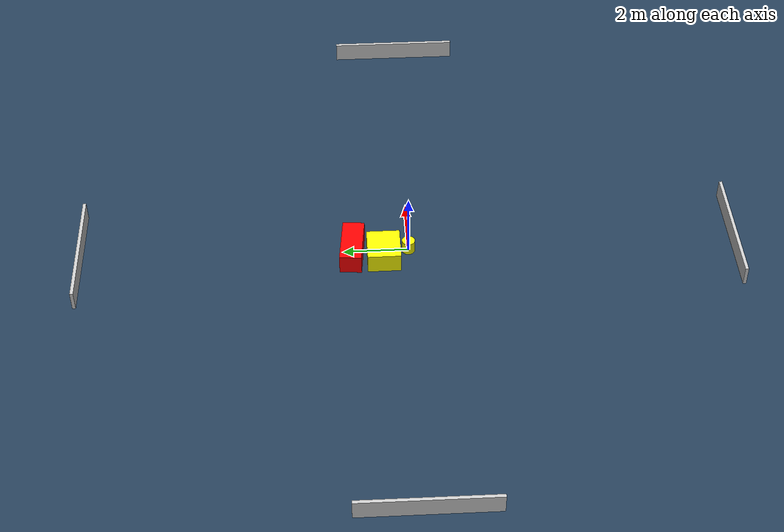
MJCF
<?xml version="1.0" ?>
<mujoco model="generated_environment">
  <option timestep="0.01" integrator="RK4" cone="elliptic"/>
  <default>
    <geom density="1"/>
  </default>
  <asset>
    <texture builtin="gradient" height="3072" name="skybox" rgb1="0.3 0.5 0.7" rgb2="0 0 0" type="skybox" width="512"/>
    <texture builtin="checker" height="300" name="groundplane" rgb1="0.2 0.3 0.4" rgb2="0.1 0.2 0.3" type="2d" width="300"/>
    <material name="groundplane" reflectance="0.2" texrepeat="5 5" texture="groundplane"/>
  </asset>
  <worldbody>
    <light dir="0 0 -1" directional="true" pos="0 0 1.5"/>
    <geom condim="3" friction="0.5 0.005 0.001" material="groundplane" name="floor" pos="0 0 0" size="0 0 0.05" type="plane"/>
    <body name="walls">
      <geom name="wall_1" condim="4" pos="-10.0 0.0 0.3" rgba="0.800000011920929 0.800000011920929 0.800000011920929 1.0" size="0.05 2.0 0.3" type="box"/>
      <geom name="wall_2" condim="4" pos="10.0 0.0 0.3" rgba="0.800000011920929 0.800000011920929 0.800000011920929 1.0" size="0.05 2.0 0.3" type="box"/>
      <geom name="wall_3" condim="4" pos="0.0 -10.0 0.3" rgba="0.800000011920929 0.800000011920929 0.800000011920929 1.0" size="2.0 0.05 0.3" type="box"/>
      <geom name="wall_4" condim="4" pos="0.0 10.0 0.3" rgba="0.800000011920929 0.800000011920929 0.800000011920929 1.0" size="2.0 0.05 0.3" type="box"/>
    </body>
    <body name="robot">
      <joint name="joint_x" type="slide" pos="0 0 0" axis="1 0 0"/>
      <joint name="joint_y" type="slide" pos="0 0 0" axis="0 1 0"/>
      <geom name="robot" type="cylinder" pos="0.0 0.0 0.2" size="0.2 0.2 0.0" mass="5.0" friction="1.0 0.005 0.0001" condim="4" rgba="1.0 1.0 0.0 1.0"/>
    </body>
    <body name="obstacle_1_movable">
      <geom name="obstacle_1_movable" condim="4" pos="-0.3172329826460823 0.7693488386043463 0.3" euler="0 0 90.42130955046582" friction="0.0 0.005 0.001" rgba="1.0 1.0 0.0 1.0" size="0.5074602819807295 0.5726510887624514 0.3" type="box" mass="0.1"/>
      <joint type="free"/>
    </body>
    <body name="obstacle_2_static">
      <geom name="obstacle_2_static" condim="4" pos="-0.10331451347300605 1.7248032121083117 0.3" euler="0 0 264.8357503514533" friction="0.0 0.005 0.001" rgba="1.0 0.0 0.0 1.0" size="0.3329180638282288 0.7858597409789323 0.3" type="box"/>
    </body>
  </worldbody>
  <actuator>
    <motor name="actuator_x" joint="joint_x" gear="1" ctrlrange="-1 1"/>
    <motor name="actuator_y" joint="joint_y" gear="1" ctrlrange="-1 1"/>
  </actuator>
</mujoco>
